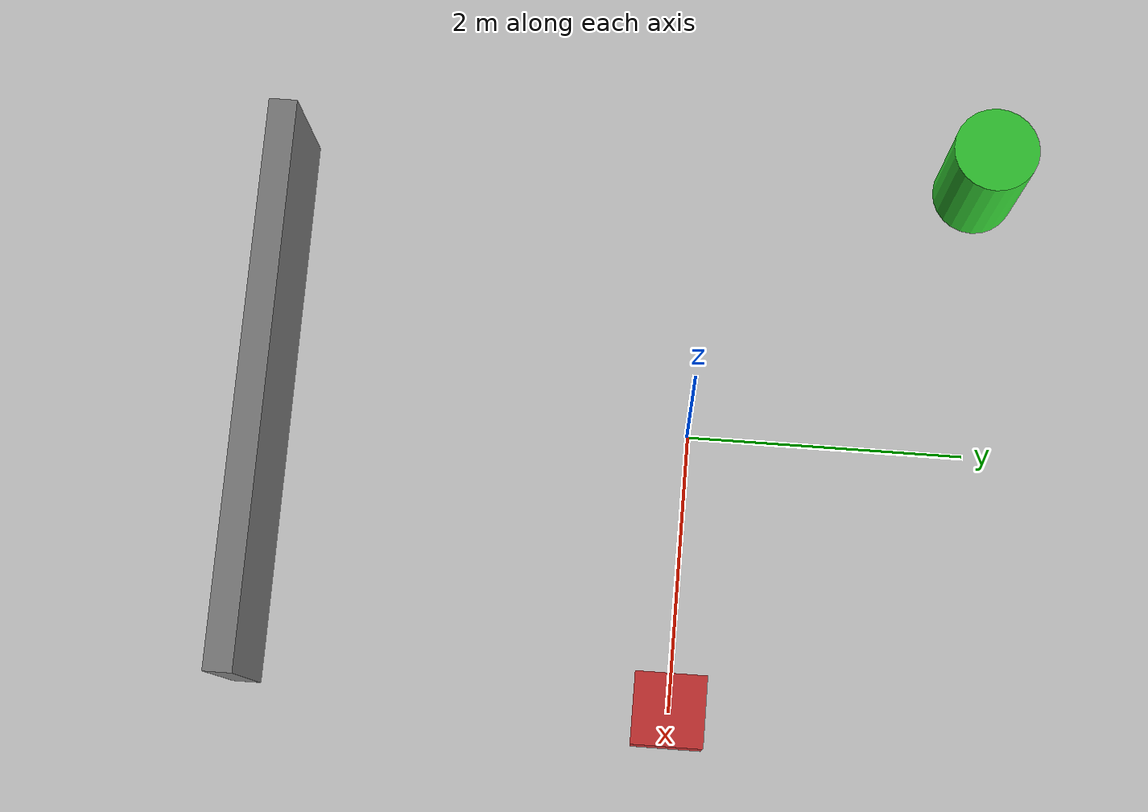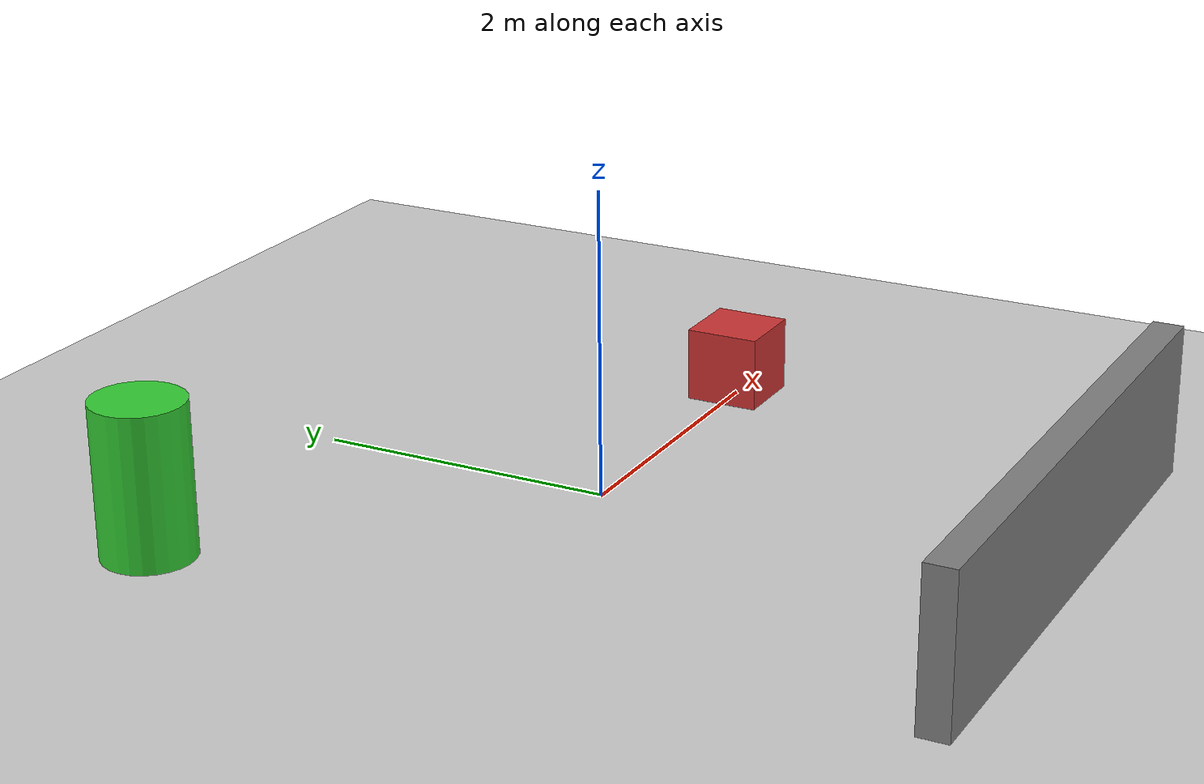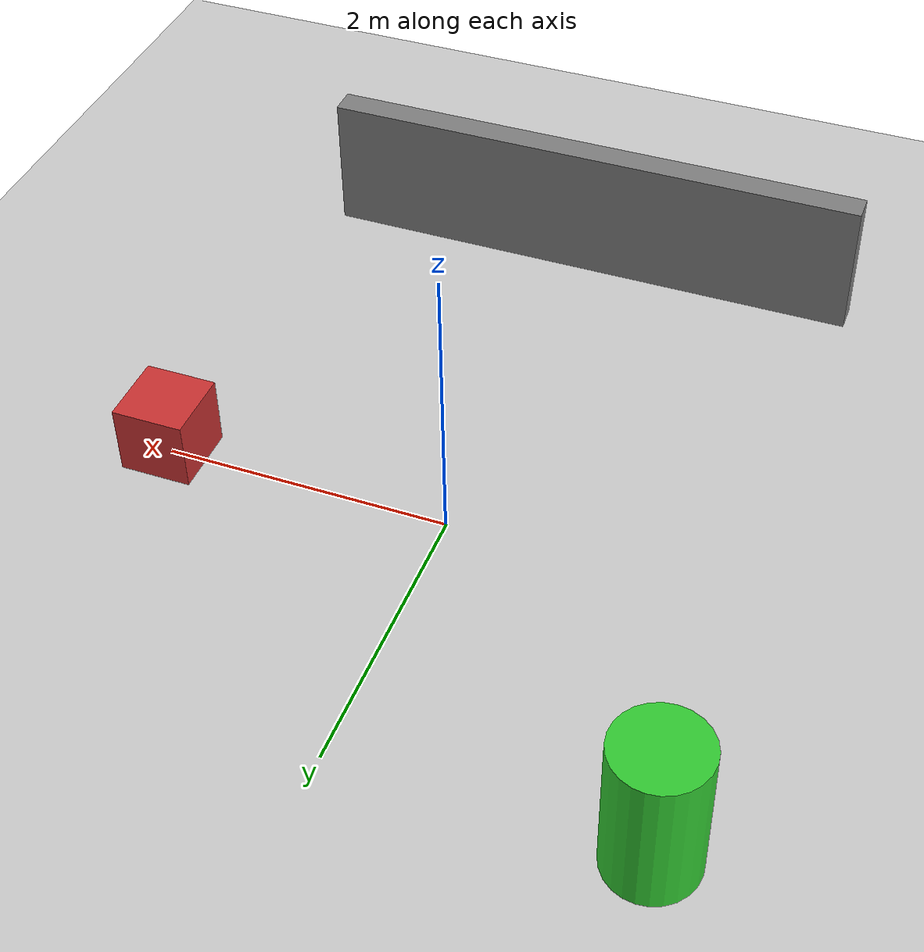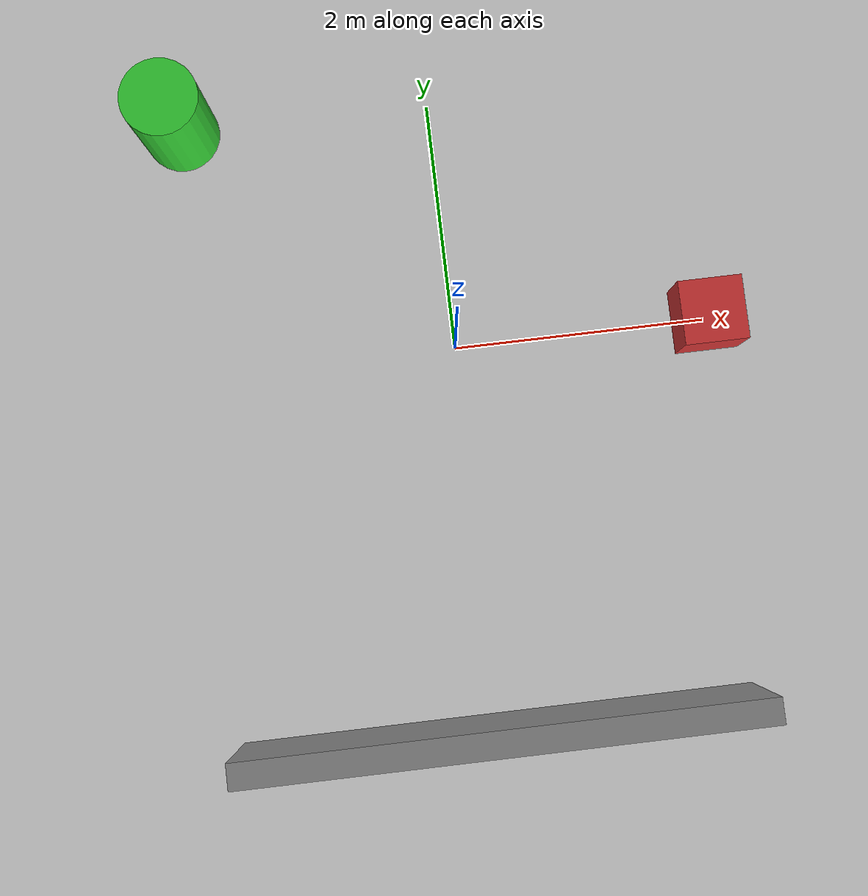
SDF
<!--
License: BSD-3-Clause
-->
<?xml version="1.0"?>
<sdf version="1.6">
  <world name="test_world">

    <!-- Physics settings -->
    <physics type="ode">
      <max_step_size>0.001</max_step_size>
      <real_time_factor>1.0</real_time_factor>
      <real_time_update_rate>1000</real_time_update_rate>
    </physics>

    <!-- Scene lighting -->
    <scene>
      <ambient>0.5 0.5 0.5 1</ambient>
      <background>0.7 0.8 0.9 1</background>
      <shadows>true</shadows>
      <grid>true</grid>
    </scene>

    <!-- Sun -->
    <light type="directional" name="sun">
      <cast_shadows>true</cast_shadows>
      <pose>0 0 10 0 0 0</pose>
      <diffuse>1.0 1.0 1.0 1</diffuse>
      <specular>0.2 0.2 0.2 1</specular>
      <attenuation>
        <range>1000</range>
        <constant>0.9</constant>
        <linear>0.01</linear>
        <quadratic>0.001</quadratic>
      </attenuation>
      <direction>-0.5 0.1 -0.9</direction>
    </light>

    <!-- Ground plane with checkerboard pattern -->
    <model name="ground_plane">
      <static>true</static>
      <link name="link">
        <collision name="collision">
          <geometry>
            <plane>
              <normal>0 0 1</normal>
              <size>50 50</size>
            </plane>
          </geometry>
          <surface>
            <friction>
              <ode>
                <mu>100</mu>
                <mu2>50</mu2>
              </ode>
            </friction>
          </surface>
        </collision>
        <visual name="visual">
          <cast_shadows>false</cast_shadows>
          <geometry>
            <plane>
              <normal>0 0 1</normal>
              <size>50 50</size>
            </plane>
          </geometry>
          <material>
            <ambient>0.8 0.8 0.8 1</ambient>
            <diffuse>0.8 0.8 0.8 1</diffuse>
            <specular>0.1 0.1 0.1 1</specular>
          </material>
        </visual>
      </link>
    </model>

    <!-- Obstacle 1: Box -->
    <model name="box_obstacle_1">
      <static>true</static>
      <pose>2 0 0.25 0 0 0</pose>
      <link name="link">
        <collision name="collision">
          <geometry>
            <box>
              <size>0.5 0.5 0.5</size>
            </box>
          </geometry>
        </collision>
        <visual name="visual">
          <geometry>
            <box>
              <size>0.5 0.5 0.5</size>
            </box>
          </geometry>
          <material>
            <ambient>0.8 0.2 0.2 1</ambient>
            <diffuse>0.8 0.2 0.2 1</diffuse>
          </material>
        </visual>
      </link>
    </model>

    <!-- Obstacle 2: Cylinder -->
    <model name="cylinder_obstacle_1">
      <static>true</static>
      <pose>-2 2 0.5 0 0 0</pose>
      <link name="link">
        <collision name="collision">
          <geometry>
            <cylinder>
              <radius>0.3</radius>
              <length>1.0</length>
            </cylinder>
          </geometry>
        </collision>
        <visual name="visual">
          <geometry>
            <cylinder>
              <radius>0.3</radius>
              <length>1.0</length>
            </cylinder>
          </geometry>
          <material>
            <ambient>0.2 0.8 0.2 1</ambient>
            <diffuse>0.2 0.8 0.2 1</diffuse>
          </material>
        </visual>
      </link>
    </model>

    <!-- Obstacle 3: Wall -->
    <model name="wall_1">
      <static>true</static>
      <pose>0 -3 0.5 0 0 0</pose>
      <link name="link">
        <collision name="collision">
          <geometry>
            <box>
              <size>4 0.2 1.0</size>
            </box>
          </geometry>
        </collision>
        <visual name="visual">
          <geometry>
            <box>
              <size>4 0.2 1.0</size>
            </box>
          </geometry>
          <material>
            <ambient>0.5 0.5 0.5 1</ambient>
            <diffuse>0.5 0.5 0.5 1</diffuse>
          </material>
        </visual>
      </link>
    </model>

  </world>
</sdf>
